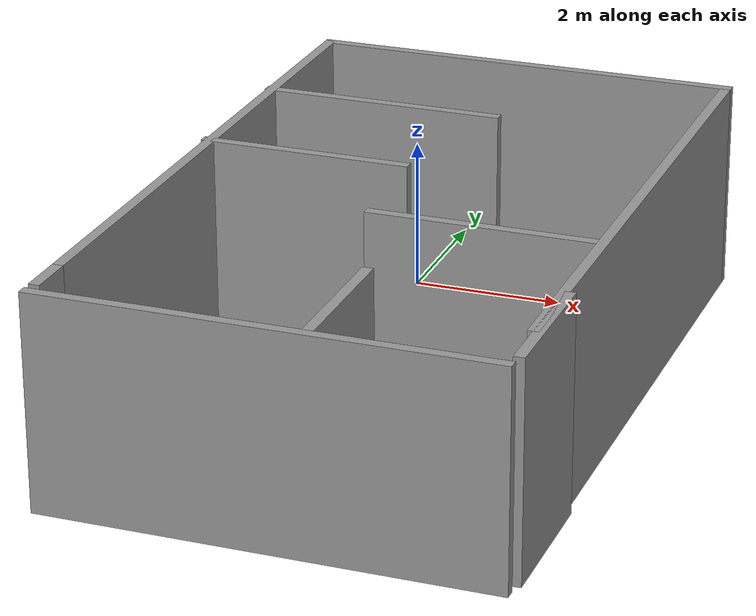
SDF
<?xml version='1.0'?>
<sdf version='1.7'>
  <model name='maze_simple2'>
    <link name='Wall_11'>
      <pose>-1.66094 0.101 -0 0 -0 0</pose>
      <self_collide>0</self_collide>
      <enable_wind>0</enable_wind>
      <kinematic>0</kinematic>
      <visual name='Wall_11_Visual'>
        <pose>0 0 0.15 0 -0 0</pose>
        <geometry>
          <box>
            <size>3 0.15 3</size>
          </box>
        </geometry>
        <material>
          <script>
            <uri>file://media/materials/scripts/gazebo.material</uri>
            <name>Gazebo/Grey</name>
          </script>
          <ambient>1 1 1 1</ambient>
          <shader type='pixel'/>
        </material>
        <meta>
          <layer>0</layer>
        </meta>
        <transparency>0</transparency>
        <cast_shadows>1</cast_shadows>
      </visual>
      <collision name='Wall_11_Collision'>
        <laser_retro>0</laser_retro>
        <max_contacts>10</max_contacts>
        <pose>0 0 0.15 0 -0 0</pose>
        <geometry>
          <box>
            <size>3 0.15 3</size>
          </box>
        </geometry>
        <surface>
          <friction>
            <ode>
              <mu>1</mu>
              <mu2>1</mu2>
              <fdir1>0 0 0</fdir1>
              <slip1>0</slip1>
              <slip2>0</slip2>
            </ode>
            <torsional>
              <coefficient>1</coefficient>
              <patch_radius>0</patch_radius>
              <surface_radius>0</surface_radius>
              <use_patch_radius>1</use_patch_radius>
              <ode>
                <slip>0</slip>
              </ode>
            </torsional>
          </friction>
          <bounce>
            <restitution_coefficient>0</restitution_coefficient>
            <threshold>1e+06</threshold>
          </bounce>
          <contact>
            <collide_without_contact>0</collide_without_contact>
            <collide_without_contact_bitmask>1</collide_without_contact_bitmask>
            <collide_bitmask>1</collide_bitmask>
            <ode>
              <soft_cfm>0</soft_cfm>
              <soft_erp>0.2</soft_erp>
              <kp>1e+13</kp>
              <kd>1</kd>
              <max_vel>0.01</max_vel>
              <min_depth>0</min_depth>
            </ode>
            <bullet>
              <split_impulse>1</split_impulse>
              <split_impulse_penetration_threshold>-0.01</split_impulse_penetration_threshold>
              <soft_cfm>0</soft_cfm>
              <soft_erp>0.2</soft_erp>
              <kp>1e+13</kp>
              <kd>1</kd>
            </bullet>
          </contact>
        </surface>
      </collision>
    </link>
    <link name='Wall_12'>
      <pose>0.573676 -4.37044 -0 0 0 -1.5708</pose>
      <self_collide>0</self_collide>
      <enable_wind>0</enable_wind>
      <kinematic>0</kinematic>
      <visual name='Wall_12_Visual'>
        <pose>0 0 0.15 0 -0 0</pose>
        <geometry>
          <box>
            <size>2 0.15 3</size>
          </box>
        </geometry>
        <material>
          <script>
            <uri>file://media/materials/scripts/gazebo.material</uri>
            <name>Gazebo/Grey</name>
          </script>
          <ambient>1 1 1 1</ambient>
          <shader type='pixel'/>
        </material>
        <meta>
          <layer>0</layer>
        </meta>
        <transparency>0</transparency>
        <cast_shadows>1</cast_shadows>
      </visual>
      <collision name='Wall_12_Collision'>
        <laser_retro>0</laser_retro>
        <max_contacts>10</max_contacts>
        <pose>0 0 0.15 0 -0 0</pose>
        <geometry>
          <box>
            <size>2 0.15 3</size>
          </box>
        </geometry>
        <surface>
          <friction>
            <ode>
              <mu>1</mu>
              <mu2>1</mu2>
              <fdir1>0 0 0</fdir1>
              <slip1>0</slip1>
              <slip2>0</slip2>
            </ode>
            <torsional>
              <coefficient>1</coefficient>
              <patch_radius>0</patch_radius>
              <surface_radius>0</surface_radius>
              <use_patch_radius>1</use_patch_radius>
              <ode>
                <slip>0</slip>
              </ode>
            </torsional>
          </friction>
          <bounce>
            <restitution_coefficient>0</restitution_coefficient>
            <threshold>1e+06</threshold>
          </bounce>
          <contact>
            <collide_without_contact>0</collide_without_contact>
            <collide_without_contact_bitmask>1</collide_without_contact_bitmask>
            <collide_bitmask>1</collide_bitmask>
            <ode>
              <soft_cfm>0</soft_cfm>
              <soft_erp>0.2</soft_erp>
              <kp>1e+13</kp>
              <kd>1</kd>
              <max_vel>0.01</max_vel>
              <min_depth>0</min_depth>
            </ode>
            <bullet>
              <split_impulse>1</split_impulse>
              <split_impulse_penetration_threshold>-0.01</split_impulse_penetration_threshold>
              <soft_cfm>0</soft_cfm>
              <soft_erp>0.2</soft_erp>
              <kp>1e+13</kp>
              <kd>1</kd>
            </bullet>
          </contact>
        </surface>
      </collision>
    </link>
    <link name='Wall_12_clone'>
      <pose>-3.04359 -4.25737 -0 0 0 -1.5708</pose>
      <self_collide>0</self_collide>
      <enable_wind>0</enable_wind>
      <kinematic>0</kinematic>
      <visual name='Wall_12_Visual'>
        <pose>0 0 0.15 0 -0 0</pose>
        <geometry>
          <box>
            <size>2 0.15 3</size>
          </box>
        </geometry>
        <material>
          <script>
            <uri>file://media/materials/scripts/gazebo.material</uri>
            <name>Gazebo/Grey</name>
          </script>
          <ambient>1 1 1 1</ambient>
          <shader type='pixel'/>
        </material>
        <meta>
          <layer>0</layer>
        </meta>
        <transparency>0</transparency>
        <cast_shadows>1</cast_shadows>
      </visual>
      <collision name='Wall_12_Collision'>
        <laser_retro>0</laser_retro>
        <max_contacts>10</max_contacts>
        <pose>0 0 0.15 0 -0 0</pose>
        <geometry>
          <box>
            <size>2 0.15 3</size>
          </box>
        </geometry>
        <surface>
          <friction>
            <ode>
              <mu>1</mu>
              <mu2>1</mu2>
              <fdir1>0 0 0</fdir1>
              <slip1>0</slip1>
              <slip2>0</slip2>
            </ode>
            <torsional>
              <coefficient>1</coefficient>
              <patch_radius>0</patch_radius>
              <surface_radius>0</surface_radius>
              <use_patch_radius>1</use_patch_radius>
              <ode>
                <slip>0</slip>
              </ode>
            </torsional>
          </friction>
          <bounce>
            <restitution_coefficient>0</restitution_coefficient>
            <threshold>1e+06</threshold>
          </bounce>
          <contact>
            <collide_without_contact>0</collide_without_contact>
            <collide_without_contact_bitmask>1</collide_without_contact_bitmask>
            <collide_bitmask>1</collide_bitmask>
            <ode>
              <soft_cfm>0</soft_cfm>
              <soft_erp>0.2</soft_erp>
              <kp>1e+13</kp>
              <kd>1</kd>
              <max_vel>0.01</max_vel>
              <min_depth>0</min_depth>
            </ode>
            <bullet>
              <split_impulse>1</split_impulse>
              <split_impulse_penetration_threshold>-0.01</split_impulse_penetration_threshold>
              <soft_cfm>0</soft_cfm>
              <soft_erp>0.2</soft_erp>
              <kp>1e+13</kp>
              <kd>1</kd>
            </bullet>
          </contact>
        </surface>
      </collision>
    </link>
    <link name='Wall_12_clone_0'>
      <pose>3.12926 -4.23634 0 0 0 -1.5708</pose>
      <self_collide>0</self_collide>
      <enable_wind>0</enable_wind>
      <kinematic>0</kinematic>
      <visual name='Wall_12_Visual'>
        <pose>0 0 0.15 0 -0 0</pose>
        <geometry>
          <box>
            <size>2 0.15 3</size>
          </box>
        </geometry>
        <material>
          <script>
            <uri>file://media/materials/scripts/gazebo.material</uri>
            <name>Gazebo/Grey</name>
          </script>
          <ambient>1 1 1 1</ambient>
          <shader type='pixel'/>
        </material>
        <meta>
          <layer>0</layer>
        </meta>
        <transparency>0</transparency>
        <cast_shadows>1</cast_shadows>
      </visual>
      <collision name='Wall_12_Collision'>
        <laser_retro>0</laser_retro>
        <max_contacts>10</max_contacts>
        <pose>0 0 0.15 0 -0 0</pose>
        <geometry>
          <box>
            <size>2 0.15 3</size>
          </box>
        </geometry>
        <surface>
          <friction>
            <ode>
              <mu>1</mu>
              <mu2>1</mu2>
              <fdir1>0 0 0</fdir1>
              <slip1>0</slip1>
              <slip2>0</slip2>
            </ode>
            <torsional>
              <coefficient>1</coefficient>
              <patch_radius>0</patch_radius>
              <surface_radius>0</surface_radius>
              <use_patch_radius>1</use_patch_radius>
              <ode>
                <slip>0</slip>
              </ode>
            </torsional>
          </friction>
          <bounce>
            <restitution_coefficient>0</restitution_coefficient>
            <threshold>1e+06</threshold>
          </bounce>
          <contact>
            <collide_without_contact>0</collide_without_contact>
            <collide_without_contact_bitmask>1</collide_without_contact_bitmask>
            <collide_bitmask>1</collide_bitmask>
            <ode>
              <soft_cfm>0</soft_cfm>
              <soft_erp>0.2</soft_erp>
              <kp>1e+13</kp>
              <kd>1</kd>
              <max_vel>0.01</max_vel>
              <min_depth>0</min_depth>
            </ode>
            <bullet>
              <split_impulse>1</split_impulse>
              <split_impulse_penetration_threshold>-0.01</split_impulse_penetration_threshold>
              <soft_cfm>0</soft_cfm>
              <soft_erp>0.2</soft_erp>
              <kp>1e+13</kp>
              <kd>1</kd>
            </bullet>
          </contact>
        </surface>
      </collision>
    </link>
    <link name='Wall_16'>
      <pose>-1.37891 2.31156 0 0 -0 0</pose>
      <self_collide>0</self_collide>
      <enable_wind>0</enable_wind>
      <kinematic>0</kinematic>
      <inertial>
        <inertia>
          <ixx>0</ixx>
          <ixy>0</ixy>
          <ixz>0</ixz>
          <iyy>0</iyy>
          <iyz>0</iyz>
          <izz>0</izz>
        </inertia>
        <mass>0</mass>
        <pose>0 0 0 0 -0 0</pose>
      </inertial>
      <visual name='Wall_16_Visual'>
        <pose>0 0 0.15 0 -0 0</pose>
        <geometry>
          <box>
            <size>3.51673 0.15 3</size>
          </box>
        </geometry>
        <material>
          <script>
            <uri>file://media/materials/scripts/gazebo.material</uri>
            <name>Gazebo/Grey</name>
          </script>
          <ambient>1 1 1 1</ambient>
          <shader type='pixel'/>
        </material>
        <meta>
          <layer>0</layer>
        </meta>
        <transparency>0</transparency>
        <cast_shadows>1</cast_shadows>
      </visual>
      <collision name='Wall_16_Collision'>
        <laser_retro>0</laser_retro>
        <max_contacts>10</max_contacts>
        <pose>0 0 0.15 0 -0 0</pose>
        <geometry>
          <box>
            <size>3.51673 0.15 3</size>
          </box>
        </geometry>
        <surface>
          <friction>
            <ode>
              <mu>1</mu>
              <mu2>1</mu2>
              <fdir1>0 0 0</fdir1>
              <slip1>0</slip1>
              <slip2>0</slip2>
            </ode>
            <torsional>
              <coefficient>1</coefficient>
              <patch_radius>0</patch_radius>
              <surface_radius>0</surface_radius>
              <use_patch_radius>1</use_patch_radius>
              <ode>
                <slip>0</slip>
              </ode>
            </torsional>
          </friction>
          <bounce>
            <restitution_coefficient>0</restitution_coefficient>
            <threshold>1e+06</threshold>
          </bounce>
          <contact>
            <collide_without_contact>0</collide_without_contact>
            <collide_without_contact_bitmask>1</collide_without_contact_bitmask>
            <collide_bitmask>1</collide_bitmask>
            <ode>
              <soft_cfm>0</soft_cfm>
              <soft_erp>0.2</soft_erp>
              <kp>1e+13</kp>
              <kd>1</kd>
              <max_vel>0.01</max_vel>
              <min_depth>0</min_depth>
            </ode>
            <bullet>
              <split_impulse>1</split_impulse>
              <split_impulse_penetration_threshold>-0.01</split_impulse_penetration_threshold>
              <soft_cfm>0</soft_cfm>
              <soft_erp>0.2</soft_erp>
              <kp>1e+13</kp>
              <kd>1</kd>
            </bullet>
          </contact>
        </surface>
      </collision>
    </link>
    <link name='Wall_4'>
      <pose>0.00675 -5.44164 0 0 -0 0</pose>
      <self_collide>0</self_collide>
      <enable_wind>0</enable_wind>
      <kinematic>0</kinematic>
      <visual name='Wall_4_Visual'>
        <pose>0 0 0.15 0 -0 0</pose>
        <geometry>
          <box>
            <size>6.25 0.15 3</size>
          </box>
        </geometry>
        <material>
          <script>
            <uri>file://media/materials/scripts/gazebo.material</uri>
            <name>Gazebo/Grey</name>
          </script>
          <ambient>1 1 1 1</ambient>
          <shader type='pixel'/>
        </material>
        <meta>
          <layer>0</layer>
        </meta>
        <transparency>0</transparency>
        <cast_shadows>1</cast_shadows>
      </visual>
      <collision name='Wall_4_Collision'>
        <laser_retro>0</laser_retro>
        <max_contacts>10</max_contacts>
        <pose>0 0 0.15 0 -0 0</pose>
        <geometry>
          <box>
            <size>6.25 0.15 3</size>
          </box>
        </geometry>
        <surface>
          <friction>
            <ode>
              <mu>1</mu>
              <mu2>1</mu2>
              <fdir1>0 0 0</fdir1>
              <slip1>0</slip1>
              <slip2>0</slip2>
            </ode>
            <torsional>
              <coefficient>1</coefficient>
              <patch_radius>0</patch_radius>
              <surface_radius>0</surface_radius>
              <use_patch_radius>1</use_patch_radius>
              <ode>
                <slip>0</slip>
              </ode>
            </torsional>
          </friction>
          <bounce>
            <restitution_coefficient>0</restitution_coefficient>
            <threshold>1e+06</threshold>
          </bounce>
          <contact>
            <collide_without_contact>0</collide_without_contact>
            <collide_without_contact_bitmask>1</collide_without_contact_bitmask>
            <collide_bitmask>1</collide_bitmask>
            <ode>
              <soft_cfm>0</soft_cfm>
              <soft_erp>0.2</soft_erp>
              <kp>1e+13</kp>
              <kd>1</kd>
              <max_vel>0.01</max_vel>
              <min_depth>0</min_depth>
            </ode>
            <bullet>
              <split_impulse>1</split_impulse>
              <split_impulse_penetration_threshold>-0.01</split_impulse_penetration_threshold>
              <soft_cfm>0</soft_cfm>
              <soft_erp>0.2</soft_erp>
              <kp>1e+13</kp>
              <kd>1</kd>
            </bullet>
          </contact>
        </surface>
      </collision>
    </link>
    <link name='Wall_5'>
      <pose>3.05675 0 0 0 -0 1.5708</pose>
      <self_collide>0</self_collide>
      <enable_wind>0</enable_wind>
      <kinematic>0</kinematic>
      <inertial>
        <inertia>
          <ixx>0</ixx>
          <ixy>0</ixy>
          <ixz>0</ixz>
          <iyy>0</iyy>
          <iyz>0</iyz>
          <izz>0</izz>
        </inertia>
        <mass>0</mass>
        <pose>0 0 0 0 -0 0</pose>
      </inertial>
      <visual name='Wall_5_Visual'>
        <pose>0 0 0.15 0 -0 0</pose>
        <geometry>
          <box>
            <size>8.98958 0.15 3</size>
          </box>
        </geometry>
        <material>
          <script>
            <uri>file://media/materials/scripts/gazebo.material</uri>
            <name>Gazebo/Grey</name>
          </script>
          <ambient>1 1 1 1</ambient>
          <shader type='pixel'/>
        </material>
        <meta>
          <layer>0</layer>
        </meta>
        <transparency>0</transparency>
        <cast_shadows>1</cast_shadows>
      </visual>
      <collision name='Wall_5_Collision'>
        <laser_retro>0</laser_retro>
        <max_contacts>10</max_contacts>
        <pose>0 0 0.15 0 -0 0</pose>
        <geometry>
          <box>
            <size>8.98958 0.15 3</size>
          </box>
        </geometry>
        <surface>
          <friction>
            <ode>
              <mu>1</mu>
              <mu2>1</mu2>
              <fdir1>0 0 0</fdir1>
              <slip1>0</slip1>
              <slip2>0</slip2>
            </ode>
            <torsional>
              <coefficient>1</coefficient>
              <patch_radius>0</patch_radius>
              <surface_radius>0</surface_radius>
              <use_patch_radius>1</use_patch_radius>
              <ode>
                <slip>0</slip>
              </ode>
            </torsional>
          </friction>
          <bounce>
            <restitution_coefficient>0</restitution_coefficient>
            <threshold>1e+06</threshold>
          </bounce>
          <contact>
            <collide_without_contact>0</collide_without_contact>
            <collide_without_contact_bitmask>1</collide_without_contact_bitmask>
            <collide_bitmask>1</collide_bitmask>
            <ode>
              <soft_cfm>0</soft_cfm>
              <soft_erp>0.2</soft_erp>
              <kp>1e+13</kp>
              <kd>1</kd>
              <max_vel>0.01</max_vel>
              <min_depth>0</min_depth>
            </ode>
            <bullet>
              <split_impulse>1</split_impulse>
              <split_impulse_penetration_threshold>-0.01</split_impulse_penetration_threshold>
              <soft_cfm>0</soft_cfm>
              <soft_erp>0.2</soft_erp>
              <kp>1e+13</kp>
              <kd>1</kd>
            </bullet>
          </contact>
        </surface>
      </collision>
    </link>
    <link name='Wall_6'>
      <pose>0.006754 4.5668 0 0 -0 3.14159</pose>
      <self_collide>0</self_collide>
      <enable_wind>0</enable_wind>
      <kinematic>0</kinematic>
      <visual name='Wall_6_Visual'>
        <pose>0 0 0.15 0 -0 0</pose>
        <geometry>
          <box>
            <size>6.25 0.15 3</size>
          </box>
        </geometry>
        <material>
          <script>
            <uri>file://media/materials/scripts/gazebo.material</uri>
            <name>Gazebo/Grey</name>
          </script>
          <ambient>1 1 1 1</ambient>
          <shader type='pixel'/>
        </material>
        <meta>
          <layer>0</layer>
        </meta>
        <transparency>0</transparency>
        <cast_shadows>1</cast_shadows>
      </visual>
      <collision name='Wall_6_Collision'>
        <laser_retro>0</laser_retro>
        <max_contacts>10</max_contacts>
        <pose>0 0 0.15 0 -0 0</pose>
        <geometry>
          <box>
            <size>6.25 0.15 3</size>
          </box>
        </geometry>
        <surface>
          <friction>
            <ode>
              <mu>1</mu>
              <mu2>1</mu2>
              <fdir1>0 0 0</fdir1>
              <slip1>0</slip1>
              <slip2>0</slip2>
            </ode>
            <torsional>
              <coefficient>1</coefficient>
              <patch_radius>0</patch_radius>
              <surface_radius>0</surface_radius>
              <use_patch_radius>1</use_patch_radius>
              <ode>
                <slip>0</slip>
              </ode>
            </torsional>
          </friction>
          <bounce>
            <restitution_coefficient>0</restitution_coefficient>
            <threshold>1e+06</threshold>
          </bounce>
          <contact>
            <collide_without_contact>0</collide_without_contact>
            <collide_without_contact_bitmask>1</collide_without_contact_bitmask>
            <collide_bitmask>1</collide_bitmask>
            <ode>
              <soft_cfm>0</soft_cfm>
              <soft_erp>0.2</soft_erp>
              <kp>1e+13</kp>
              <kd>1</kd>
              <max_vel>0.01</max_vel>
              <min_depth>0</min_depth>
            </ode>
            <bullet>
              <split_impulse>1</split_impulse>
              <split_impulse_penetration_threshold>-0.01</split_impulse_penetration_threshold>
              <soft_cfm>0</soft_cfm>
              <soft_erp>0.2</soft_erp>
              <kp>1e+13</kp>
              <kd>1</kd>
            </bullet>
          </contact>
        </surface>
      </collision>
    </link>
    <link name='Wall_7'>
      <pose>-3.04325 0 0 0 0 -1.5708</pose>
      <self_collide>0</self_collide>
      <enable_wind>0</enable_wind>
      <kinematic>0</kinematic>
      <inertial>
        <inertia>
          <ixx>0</ixx>
          <ixy>0</ixy>
          <ixz>0</ixz>
          <iyy>0</iyy>
          <iyz>0</iyz>
          <izz>0</izz>
        </inertia>
        <mass>0</mass>
        <pose>0 0 0 0 -0 0</pose>
      </inertial>
      <visual name='Wall_7_Visual'>
        <pose>0 0 0.15 0 -0 0</pose>
        <geometry>
          <box>
            <size>9.20079 0.15 3</size>
          </box>
        </geometry>
        <material>
          <script>
            <uri>file://media/materials/scripts/gazebo.material</uri>
            <name>Gazebo/Grey</name>
          </script>
          <ambient>1 1 1 1</ambient>
          <shader type='pixel'/>
        </material>
        <meta>
          <layer>0</layer>
        </meta>
        <transparency>0</transparency>
        <cast_shadows>1</cast_shadows>
      </visual>
      <collision name='Wall_7_Collision'>
        <laser_retro>0</laser_retro>
        <max_contacts>10</max_contacts>
        <pose>0 0 0.15 0 -0 0</pose>
        <geometry>
          <box>
            <size>9.20079 0.15 3</size>
          </box>
        </geometry>
        <surface>
          <friction>
            <ode>
              <mu>1</mu>
              <mu2>1</mu2>
              <fdir1>0 0 0</fdir1>
              <slip1>0</slip1>
              <slip2>0</slip2>
            </ode>
            <torsional>
              <coefficient>1</coefficient>
              <patch_radius>0</patch_radius>
              <surface_radius>0</surface_radius>
              <use_patch_radius>1</use_patch_radius>
              <ode>
                <slip>0</slip>
              </ode>
            </torsional>
          </friction>
          <bounce>
            <restitution_coefficient>0</restitution_coefficient>
            <threshold>1e+06</threshold>
          </bounce>
          <contact>
            <collide_without_contact>0</collide_without_contact>
            <collide_without_contact_bitmask>1</collide_without_contact_bitmask>
            <collide_bitmask>1</collide_bitmask>
            <ode>
              <soft_cfm>0</soft_cfm>
              <soft_erp>0.2</soft_erp>
              <kp>1e+13</kp>
              <kd>1</kd>
              <max_vel>0.01</max_vel>
              <min_depth>0</min_depth>
            </ode>
            <bullet>
              <split_impulse>1</split_impulse>
              <split_impulse_penetration_threshold>-0.01</split_impulse_penetration_threshold>
              <soft_cfm>0</soft_cfm>
              <soft_erp>0.2</soft_erp>
              <kp>1e+13</kp>
              <kd>1</kd>
            </bullet>
          </contact>
        </surface>
      </collision>
    </link>
    <link name='Wall_9'>
      <pose>1.49332 -1.601 -0 0 -0 0</pose>
      <self_collide>0</self_collide>
      <enable_wind>0</enable_wind>
      <kinematic>0</kinematic>
      <visual name='Wall_9_Visual'>
        <pose>0 0 0.15 0 -0 0</pose>
        <geometry>
          <box>
            <size>3.25 0.15 3</size>
          </box>
        </geometry>
        <material>
          <script>
            <uri>file://media/materials/scripts/gazebo.material</uri>
            <name>Gazebo/Grey</name>
          </script>
          <ambient>1 1 1 1</ambient>
          <shader type='pixel'/>
        </material>
        <meta>
          <layer>0</layer>
        </meta>
        <transparency>0</transparency>
        <cast_shadows>1</cast_shadows>
      </visual>
      <collision name='Wall_9_Collision'>
        <laser_retro>0</laser_retro>
        <max_contacts>10</max_contacts>
        <pose>0 0 0.15 0 -0 0</pose>
        <geometry>
          <box>
            <size>3.25 0.15 3</size>
          </box>
        </geometry>
        <surface>
          <friction>
            <ode>
              <mu>1</mu>
              <mu2>1</mu2>
              <fdir1>0 0 0</fdir1>
              <slip1>0</slip1>
              <slip2>0</slip2>
            </ode>
            <torsional>
              <coefficient>1</coefficient>
              <patch_radius>0</patch_radius>
              <surface_radius>0</surface_radius>
              <use_patch_radius>1</use_patch_radius>
              <ode>
                <slip>0</slip>
              </ode>
            </torsional>
          </friction>
          <bounce>
            <restitution_coefficient>0</restitution_coefficient>
            <threshold>1e+06</threshold>
          </bounce>
          <contact>
            <collide_without_contact>0</collide_without_contact>
            <collide_without_contact_bitmask>1</collide_without_contact_bitmask>
            <collide_bitmask>1</collide_bitmask>
            <ode>
              <soft_cfm>0</soft_cfm>
              <soft_erp>0.2</soft_erp>
              <kp>1e+13</kp>
              <kd>1</kd>
              <max_vel>0.01</max_vel>
              <min_depth>0</min_depth>
            </ode>
            <bullet>
              <split_impulse>1</split_impulse>
              <split_impulse_penetration_threshold>-0.01</split_impulse_penetration_threshold>
              <soft_cfm>0</soft_cfm>
              <soft_erp>0.2</soft_erp>
              <kp>1e+13</kp>
              <kd>1</kd>
            </bullet>
          </contact>
        </surface>
      </collision>
    </link>
    <static>1</static>
    <allow_auto_disable>1</allow_auto_disable>
  </model>
</sdf>
